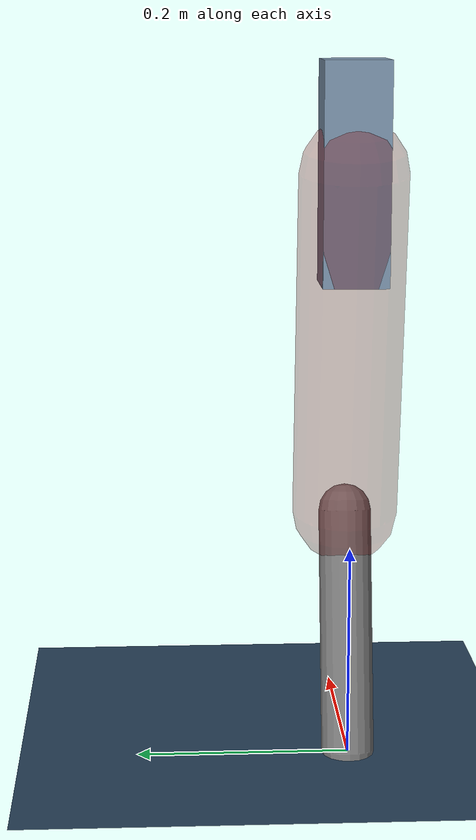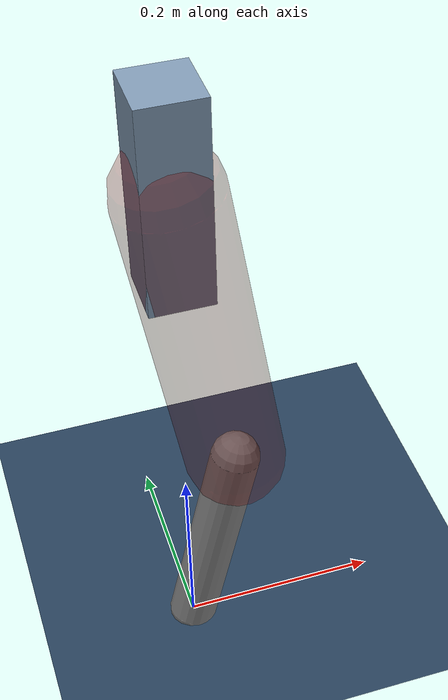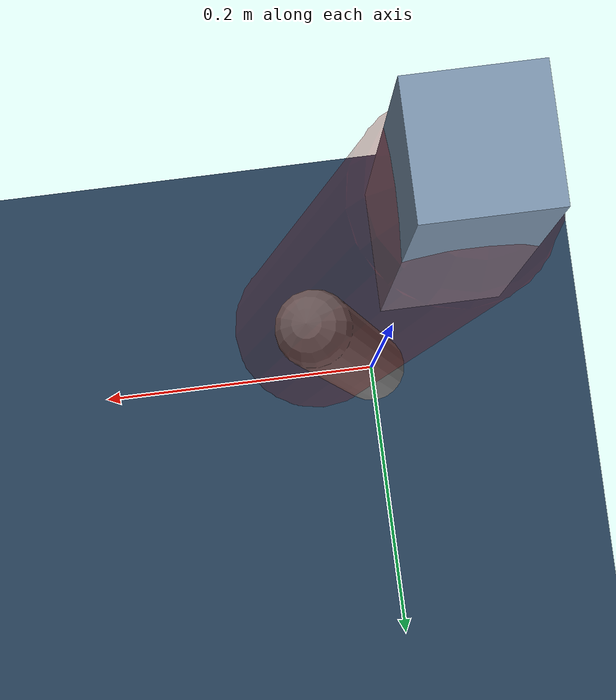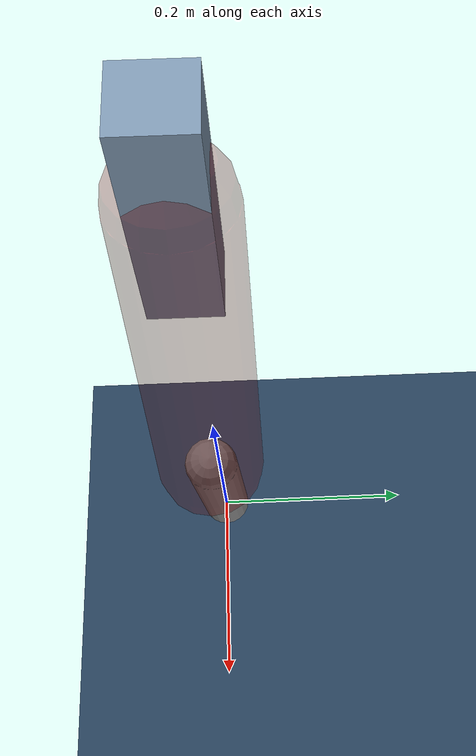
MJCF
<mujoco model="Hopper2D">
	<compiler inertiafromgeom="true" angle="radian" />
	<option timestep="0.001" integrator="implicit" cone="elliptic" solver="Newton" tolerance="1e-10" />

	<default>
		<geom contype="1" conaffinity="1" condim="3" friction="2 0.005 0.0001" solref="0.005 1" />
		<joint limited="true" damping="0.1" />
	</default>

	<asset>
		<texture name="skybox" type="skybox" builtin="gradient" rgb1=".4 .6 .8" rgb2="0 0 0" width="800" height="800" />
		<texture name="grid" type="2d" builtin="checker" rgb1=".1 .2 .3" rgb2=".2 .3 .4" width="300" height="300" mark="edge" markrgb=".2 .3 .4" />
		<material name="ground" texture="grid" texrepeat="1 1" texuniform="true" reflectance="0.1" />
		<material name="leg" rgba="0.5 0.6 0.7 1" />
	</asset>

	<worldbody>

		<geom name="floor" type="plane" size="5 5 0.25" material="ground" />

		<light directional="false" diffuse="0.8 0.8 0.8" specular="0.3 0.3 0.3" pos="0 0 2" dir="0 0 -1" />
		<light mode="targetbodycom" target="base" directional="false" diffuse="0.8 0.8 0.8" specular="0.3 0.3 0.3" pos="0 0 2" dir="0 0 -1" />

		<camera name="fixed" pos="0 -2 1" xyaxes="1 0 0 0 0 1" />
		<camera name="tracking" mode="trackcom" pos="0 -3 1" />

		<body name="root" pos="0 0 0.5489444846073069">
			<joint name="slide_x" type="slide" axis="1 0 0" range="-100 100" />
			<joint name="slide_z" type="slide" axis="0 0 1" range="0 10" />

			<body name="base" pos="0 0 0">
				<geom name="torso" type="box" size="0.03 0.03 0.1" mass="1.4" material="leg" />

				<body name="link1" pos="0 0 0" euler="0 1.4126464760519424 0">
					<joint type="hinge" axis="0 -1 0" pos="0 0 0" name="hinge1" limited="true" range="-3.14 3.14" stiffness="0" damping="0.1" />
					<geom name="thigh" type="capsule" fromto="0 0 0 0.32873811089740695 0 0" size="0.05" rgba="0.5 0 0 0.3" mass="1.0673667105127393" />

					<body name="link2" pos="0.32873811089740695 0 0" euler="0 0.3849903346004001 0">
						<joint type="hinge" axis="0 -1 0" pos="0 0 0" name="hinge2" limited="true" range="-3.14 3.14" stiffness="0" damping="0.1" />
						<geom name="shank" type="capsule" fromto="0 0 0 0.23020637370990002 0 0" size="0.025" mass="0.42616509896792" />

					</body>
				</body>
			</body>
		</body>
	</worldbody>

	<actuator>
		<motor name="torque1" joint="hinge1" ctrlrange="-44.89544936612248 44.89544936612248" ctrllimited="true" gear="1" />
		<motor name="torque2" joint="hinge2" ctrlrange="-16.835386337080045 16.835386337080045" ctrllimited="true" gear="1" />
	</actuator>
</mujoco>
